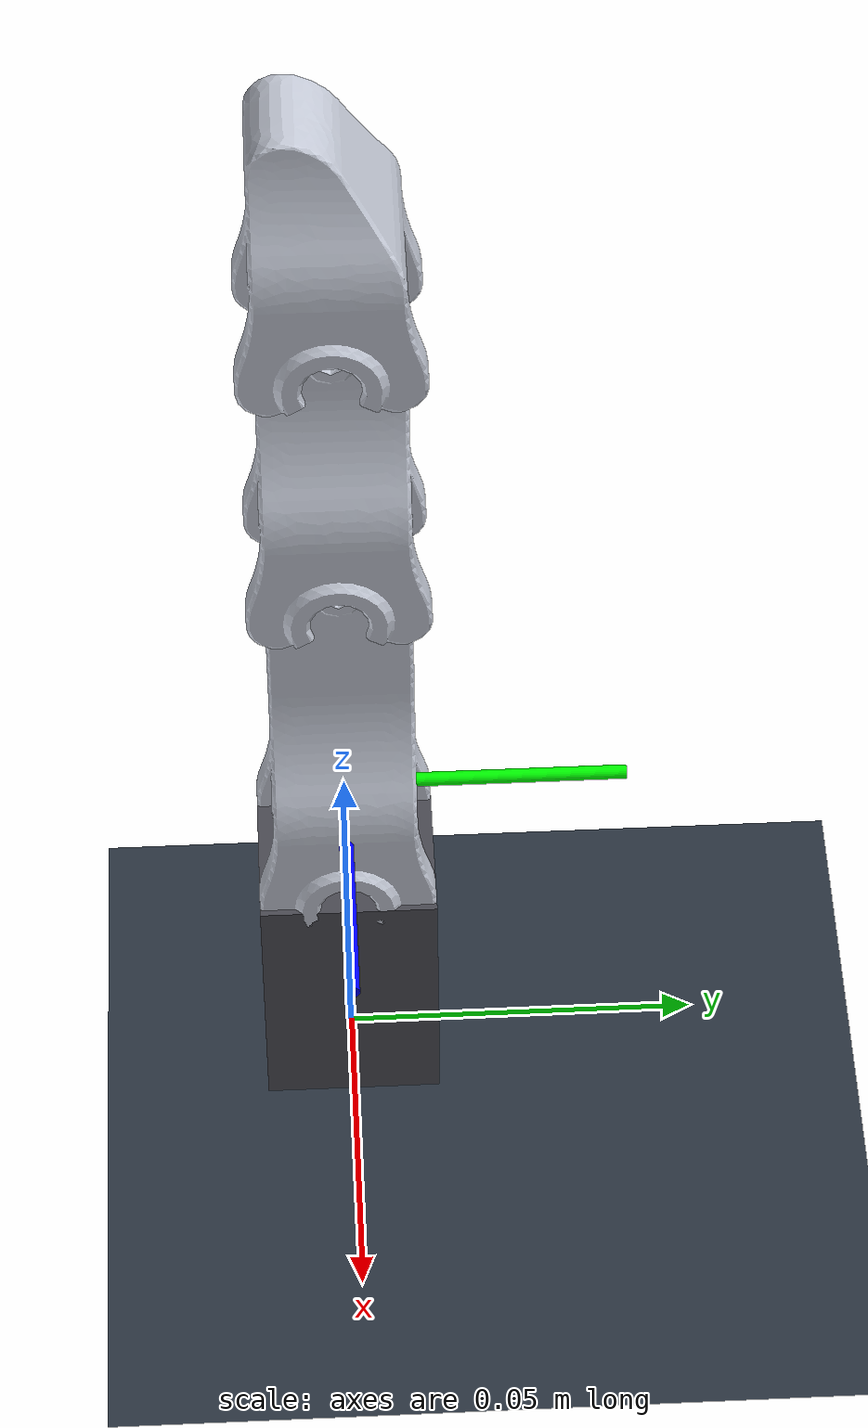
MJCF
<mujoco model="tendon_finger_3R">

  <compiler angle="radian" meshdir="meshes" autolimits="true"/>
  <option timestep="0.002" integrator="implicitfast" gravity="0.000000 0.000000 -9.810000"/>

  <default>
    <joint type="hinge" axis="0.000000 0.000000 1.000000" damping="0.08" stiffness="2.0"/>
    <default class="phalanx">
      <geom type="mesh" rgba="0.78 0.80 0.85 1" contype="1" conaffinity="1"
            condim="3" friction="1 0.05 0.001" density="0"/>
    </default>
    <site group="3"/>
  </default>

  <asset>
    <mesh name="proximal_mesh" file="proximal.stl"/>
    <mesh name="middle_mesh"   file="middle.stl"/>
    <mesh name="distal_mesh"   file="distal.stl"/>
    <texture name="grid" type="2d" builtin="checker" rgb1="0.2 0.25 0.3" rgb2="0.15 0.18 0.22"
             width="300" height="300"/>
    <material name="grid" texture="grid" texrepeat="6 6" reflectance="0.1"/>
  </asset>

  <worldbody>
    <light pos="0 -0.3 0.5" dir="0 0.5 -1" diffuse="0.9 0.9 0.9"/>
    <light pos="0.2 0.2 0.4" dir="-0.3 -0.3 -1" diffuse="0.5 0.5 0.5"/>
    <geom name="floor" type="plane" size="0.5 0.5 0.05" pos="0 0 0" material="grid"/>

    <body name="base" pos="0 0 0.05" euler="0 1.5707963 0">
      <geom name="base_x_axis" type="cylinder" size="0.001" fromto="0 0 0  0.04 0 0" rgba="1 0 0 1" contype="0" conaffinity="0" mass="0"/>
      <geom name="base_y_axis" type="cylinder" size="0.001" fromto="0 0 0  0 0.04 0" rgba="0 1 0 1" contype="0" conaffinity="0" mass="0"/>
      <geom name="base_z_axis" type="cylinder" size="0.001" fromto="0 0 0  0 0 0.04" rgba="0 0 1 1" contype="0" conaffinity="0" mass="0"/>
      <geom type="box" size="0.01875 0.0125 0.0135" pos="0.03125 0 0" rgba="0.3 0.3 0.33 1"
            contype="0" conaffinity="0" density="0" mass="0"/>
      <site name="tendon_origin" pos="0.025000 -0.002000 0.000000" size="0.0015" rgba="0.1 0.9 0.3 1"/>

      <body name="proximal" pos="0.012500 0.000000 0.000000">
        <joint name="mcp" stiffness="1.0" damping="0.08" range="-0.08727 1.57080"/>
        <inertial pos="-0.026251 0.000034 -0.000000" mass="0.015500" fullinertia="1.215421e-06 4.532059e-06 4.431324e-06 2.072062e-08 1.045668e-13 -6.640057e-15"/>
        <geom class="phalanx" mesh="proximal_mesh"/>
        <site name="mcp_entry" pos="-0.011100 0.000000 0.000000" size="0.0015" rgba="0.95 0.5 0.1 1"/>
        <site name="mcp_exit" pos="-0.044400 0.000000 0.000000" size="0.0015" rgba="0.95 0.5 0.1 1"/>

        <body name="middle" pos="-0.055500 0.000000 0.000000">
          <joint name="pip" stiffness="2.0" damping="0.08" range="0.00000 1.91986"/>
          <inertial pos="-0.020253 0.000089 -0.000000" mass="0.006790" fullinertia="5.818377e-07 1.279118e-06 1.195905e-06 8.658681e-09 3.662567e-14 -3.664415e-15"/>
          <geom class="phalanx" mesh="middle_mesh"/>
        <site name="pip_entry" pos="-0.008320 -0.002000 0.000000" size="0.0015" rgba="0.95 0.5 0.1 1"/>
        <site name="pip_exit" pos="-0.033280 -0.002000 0.000000" size="0.0015" rgba="0.95 0.5 0.1 1"/>

          <body name="distal" pos="-0.041600 0.000000 0.000000">
            <joint name="dip" stiffness="3.0" damping="0.08" range="0.00000 1.57080"/>
            <inertial pos="-0.016047 -0.000800 0.000000" mass="0.003910" fullinertia="3.462849e-07 5.280969e-07 4.537598e-07 -4.185637e-08 -5.976719e-15 -1.203437e-14"/>
            <geom class="phalanx" mesh="distal_mesh"/>
        <site name="dip_entry" pos="-0.007160 -0.005000 0.000000" size="0.0015" rgba="0.95 0.5 0.1 1"/>
        <site name="dip_anchor" pos="-0.028639 -0.005000 0.000000" size="0.0015" rgba="0.95 0.5 0.1 1"/>
          </body>
        </body>
      </body>
    </body>
  </worldbody>

  <tendon>
    <spatial name="flexor" width="0.0006" rgba="0.9 0.2 0.2 1"
             stiffness="5000.0" damping="1.0" springlength="-1">
      <site site="tendon_origin"/>
      <site site="mcp_entry"/>
      <site site="mcp_exit"/>
      <site site="pip_entry"/>
      <site site="pip_exit"/>
      <site site="dip_entry"/>
      <site site="dip_anchor"/>
    </spatial>
  </tendon>

  <sensor>
    <jointpos  name="mcp_angle" joint="mcp"/>
    <jointvel  name="mcp_vel"   joint="mcp"/>
    <jointpos  name="pip_angle" joint="pip"/>
    <jointvel  name="pip_vel"   joint="pip"/>
    <jointpos  name="dip_angle" joint="dip"/>
    <jointvel  name="dip_vel"   joint="dip"/>
    <tendonpos name="flexor_length" tendon="flexor"/>
  </sensor>

  <actuator>
    <motor name="tendon_displacement" tendon="flexor"
           ctrlrange="0 0.2" ctrllimited="true" gear="0"/>
  </actuator>
</mujoco>
